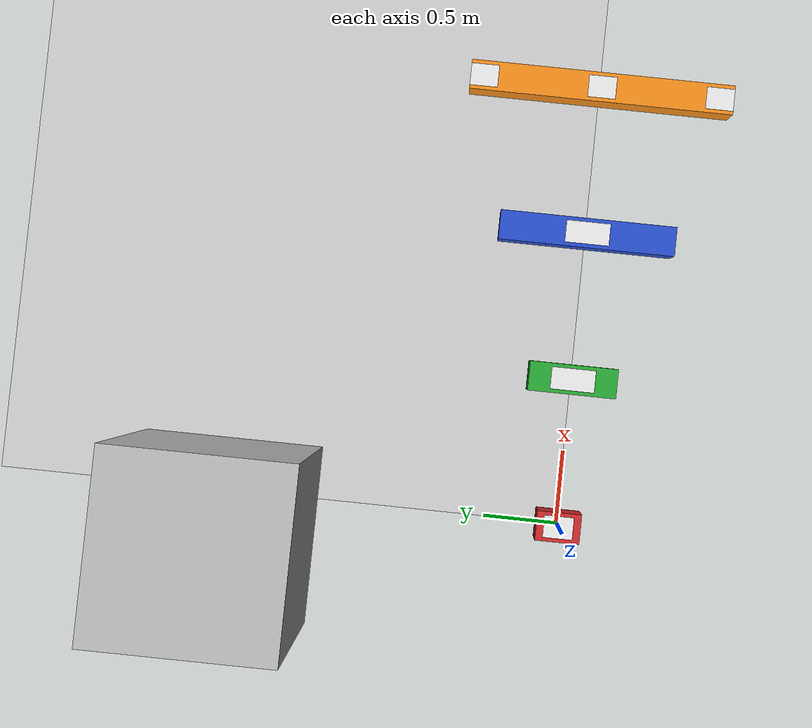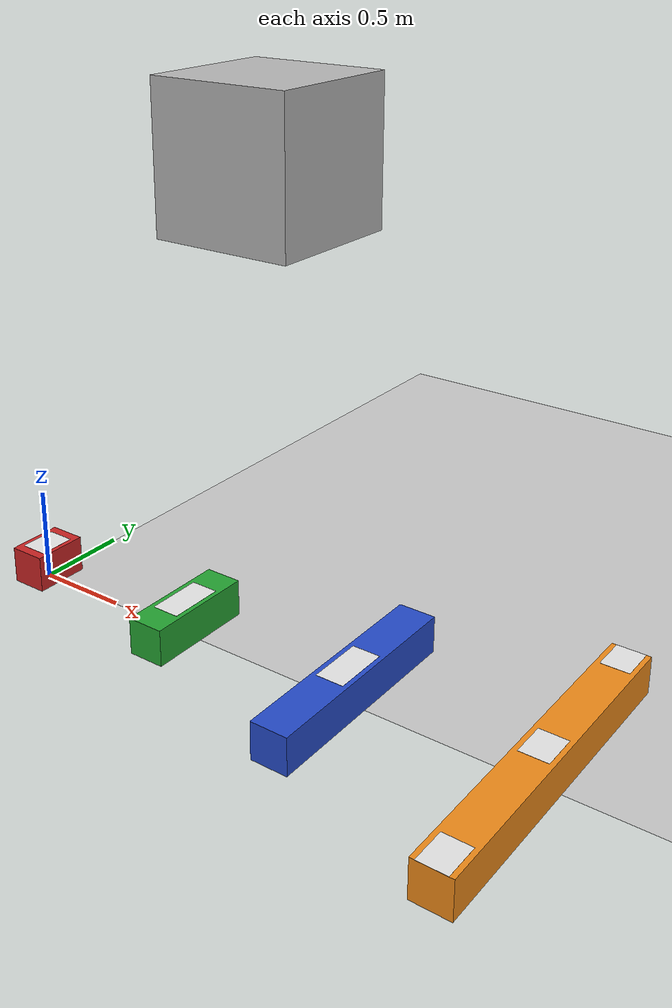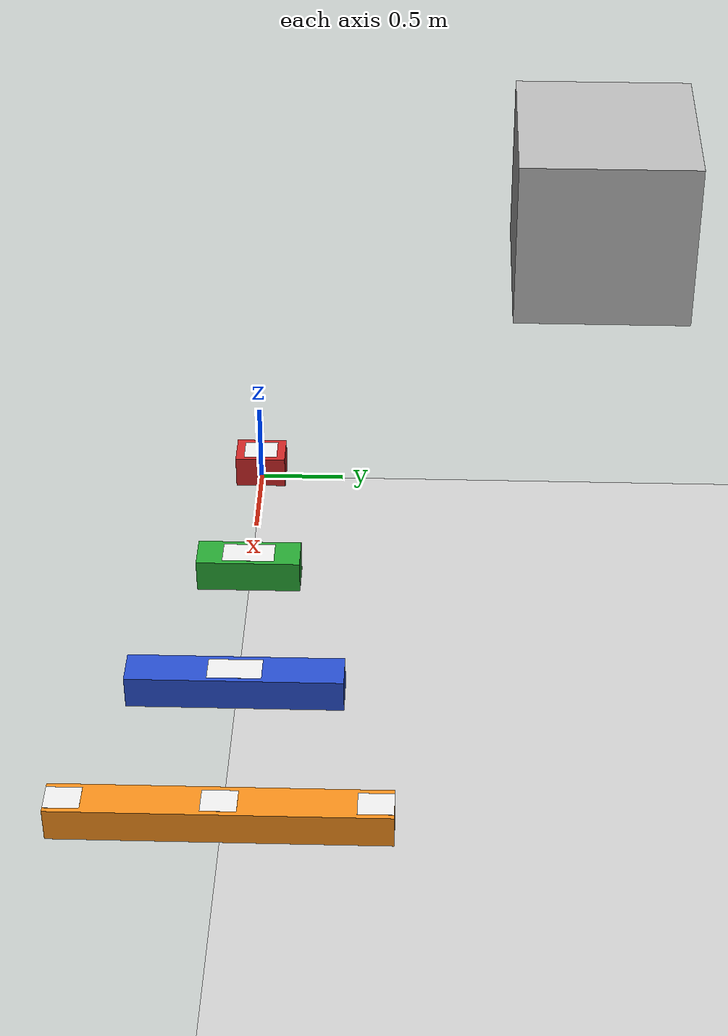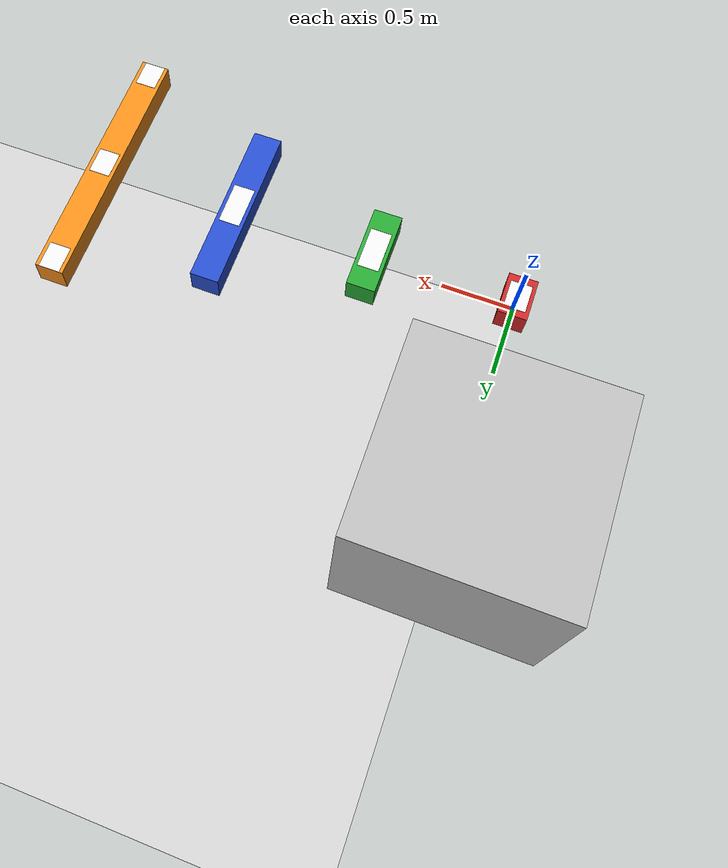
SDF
<sdf version="1.6">
 <world name="default">
  <plugin name="ros_link_attacher_plugin" filename="libgazebo_ros_link_attacher.so"/>
  <light name="sun" type="directional">
   <pose>0 0 10 0 -0 0</pose>
   <diffuse>0.8 0.8 0.8 1</diffuse>
   <specular>0.1 0.1 0.1 1</specular>
   <attenuation>
    <range>1000</range>
    <constant>0.9</constant>
    <linear>0.01</linear>
    <quadratic>0.001</quadratic>
   </attenuation>
   <direction>-0.5 0.5 -1</direction>
  </light>
  <model name="arena">
   <static>1</static>
   <link name="link">
    <pose>30 25 0 0 -0 0</pose>
    <collision name="collision">
     <geometry><plane><normal>0 0 1</normal><size>100 100</size></plane></geometry>
     <surface><friction><ode><mu>100</mu><mu2>50</mu2></ode></friction></surface>
    </collision>
    <visual name="visual">
     <cast_shadows>0</cast_shadows>
     <geometry><plane><normal>0 0 1</normal><size>60 50</size></plane></geometry>
     <material><script><uri>file://materials/mbzirc.material</uri><name>mbzirc/Asfalt</name></script></material>
    </visual>
   </link>
  </model>
  <model name="Red_brick_01">
   <pose>0 0 0.1 0 -0 0</pose>
   <link name="Red_brick_01_link">
    <inertial>
     <mass>1</mass>
     <inertia>
      <ixx>0.0108333</ixx>
      <ixy>0</ixy>
      <ixz>0</ixz>
      <iyy>0.00666667</iyy>
      <iyz>0</iyz>
      <izz>0.0108333</izz>
     </inertia>
    </inertial>
    <visual name="visual">
     <material><script><uri>gazebo.material</uri><name>Gazebo/Red</name></script></material>
     <geometry><box><size>0.2 0.3 0.2</size></box></geometry>
    </visual>
    <visual name="visual FM plate">
     <pose>0 0 0.1 0 -0 0</pose>
     <material><script><uri>gazebo.material</uri><name>Gazebo/White</name></script></material>
     <geometry><box><size>0.15 0.2 0.001</size></box></geometry>
    </visual>
    <collision name="collision"><geometry><box><size>0.2 0.3 0.2</size></box></geometry></collision>
   </link>
  </model>
  <model name="Blue_brick_01">
   <pose>0 0 0.1 0 -0 0</pose>
   <link name="Blue_brick_01_link">
    <pose>2 0 0 0 -0 0</pose>
    <inertial>
     <mass>1.5</mass>
     <inertia><ixx>0.185</ixx><ixy>0</ixy><ixz>0</ixz><iyy>0.01</iyy><iyz>0</iyz><izz>0.185</izz></inertia>
    </inertial>
    <visual name="visual">
     <material><script><uri>gazebo.material</uri><name>Gazebo/Blue</name></script></material>
     <geometry><box><size>0.2 1.2 0.2</size></box></geometry>
    </visual>
    <visual name="visual FM plate">
     <pose>0 0 0.1 0 -0 0</pose>
     <material><script><uri>gazebo.material</uri><name>Gazebo/White</name></script></material>
     <geometry><box><size>0.15 0.3 0.001</size></box></geometry>
    </visual>
    <collision name="collision"><geometry><box><size>0.2 1.2 0.2</size></box></geometry></collision>
   </link>
  </model>
  <model name="Green_brick_01">
   <pose>0 0 0.1 0 -0 0</pose>
   <link name="Green_brick_01_link">
    <pose>1 0 0 0 -0 0</pose>
    <inertial>
     <mass>1</mass>
     <inertia>
      <ixx>0.0333333</ixx>
      <ixy>0</ixy>
      <ixz>0</ixz>
      <iyy>0.00666667</iyy>
      <iyz>0</iyz>
      <izz>0.0333333</izz>
     </inertia>
    </inertial>
    <visual name="visual">
     <material><script><uri>gazebo.material</uri><name>Gazebo/Green</name></script></material>
     <geometry><box><size>0.2 0.6 0.2</size></box></geometry>
    </visual>
    <visual name="visual FM plate">
     <pose>0 0 0.1 0 -0 0</pose>
     <material><script><uri>gazebo.material</uri><name>Gazebo/White</name></script></material>
     <geometry><box><size>0.15 0.3 0.001</size></box></geometry>
    </visual>
    <collision name="collision"><geometry><box><size>0.2 0.6 0.2</size></box></geometry></collision>
   </link>
  </model>
  <model name="Orange_brick_01">
   <pose>0 0 0.1 0 -0 0</pose>
   <link name="Orange_brick_01_link">
    <pose>3 0 0 0 -0 0</pose>
    <inertial>
     <mass>2</mass>
     <inertia>
      <ixx>0.546667</ixx>
      <ixy>0</ixy>
      <ixz>0</ixz>
      <iyy>0.0133333</iyy>
      <iyz>0</iyz>
      <izz>0.546667</izz>
     </inertia>
    </inertial>
    <visual name="visual">
     <material><script><uri>gazebo.material</uri><name>Gazebo/Orange</name></script></material>
     <geometry><box><size>0.2 1.8 0.2</size></box></geometry>
    </visual>
    <visual name="visual FM plate 1">
     <pose>0 -0.805 0.1 0 -0 0</pose>
     <material><script><uri>gazebo.material</uri><name>Gazebo/White</name></script></material>
     <geometry><box><size>0.15 0.19 0.001</size></box></geometry>
    </visual>
    <visual name="visual FM plate 2">
     <pose>0 0 0.1 0 -0 0</pose>
     <material><script><uri>gazebo.material</uri><name>Gazebo/White</name></script></material>
     <geometry><box><size>0.15 0.19 0.001</size></box></geometry>
    </visual>
    <visual name="visual FM plate 3">
     <pose>0 0.805 0.1 0 -0 0</pose>
     <material><script><uri>gazebo.material</uri><name>Gazebo/White</name></script></material>
     <geometry><box><size>0.15 0.19 0.001</size></box></geometry>
    </visual>
    <collision name="collision"><geometry><box><size>0.2 1.8 0.2</size></box></geometry></collision>
   </link>
  </model>
  <model name="kinect">
   <link name="kinect_standalone::kinect_link">
    <inertial>
     <mass>1</mass>
     <inertia><ixx>1</ixx><ixy>0</ixy><ixz>0</ixz><iyy>1</iyy><iyz>0</iyz><izz>1</izz></inertia>
    </inertial>
    <visual name="visual"><geometry><box><size>1 1 1</size></box></geometry></visual>
    <collision name="collision">
     <geometry><box><size>1 1 1</size></box></geometry>
     <surface>
      <friction>
       <ode><mu>1</mu><mu2>1</mu2><fdir1>0 0 0</fdir1><slip1>0</slip1><slip2>0</slip2></ode>
       <torsional>
        <coefficient>1</coefficient>
        <patch_radius>0</patch_radius>
        <surface_radius>0</surface_radius>
        <use_patch_radius>1</use_patch_radius>
        <ode><slip>0</slip></ode>
       </torsional>
      </friction>
      <bounce><restitution_coefficient>0</restitution_coefficient><threshold>1e+06</threshold></bounce>
      <contact>
       <collide_without_contact>0</collide_without_contact>
       <collide_without_contact_bitmask>1</collide_without_contact_bitmask>
       <collide_bitmask>1</collide_bitmask>
       <ode>
        <soft_cfm>0</soft_cfm>
        <soft_erp>0.2</soft_erp>
        <kp>1e+13</kp>
        <kd>1</kd>
        <max_vel>0.01</max_vel>
        <min_depth>0</min_depth>
       </ode>
       <bullet>
        <split_impulse>1</split_impulse>
        <split_impulse_penetration_threshold>-0.01</split_impulse_penetration_threshold>
        <soft_cfm>0</soft_cfm>
        <soft_erp>0.2</soft_erp>
        <kp>1e+13</kp>
        <kd>1</kd>
       </bullet>
      </contact>
     </surface>
    </collision>
   </link>
   <static>1</static>
   <pose>0 2 2 0 -0 0</pose>
  </model>
  <gravity>0 0 -9.8</gravity>
  <magnetic_field>6e-06 2.3e-05 -4.2e-05</magnetic_field>
  <atmosphere type="adiabatic"/>
  <physics name="default_physics" default="0" type="ode">
   <max_step_size>0.001</max_step_size>
   <real_time_factor>1</real_time_factor>
   <real_time_update_rate>1000</real_time_update_rate>
  </physics>
  <scene><ambient>0.4 0.4 0.4 1</ambient><background>0.7 0.7 0.7 1</background><shadows>1</shadows></scene>
  <spherical_coordinates>
   <surface_model>EARTH_WGS84</surface_model>
   <latitude_deg>0</latitude_deg>
   <longitude_deg>0</longitude_deg>
   <elevation>0</elevation>
   <heading_deg>0</heading_deg>
  </spherical_coordinates>
 </world>
</sdf>
